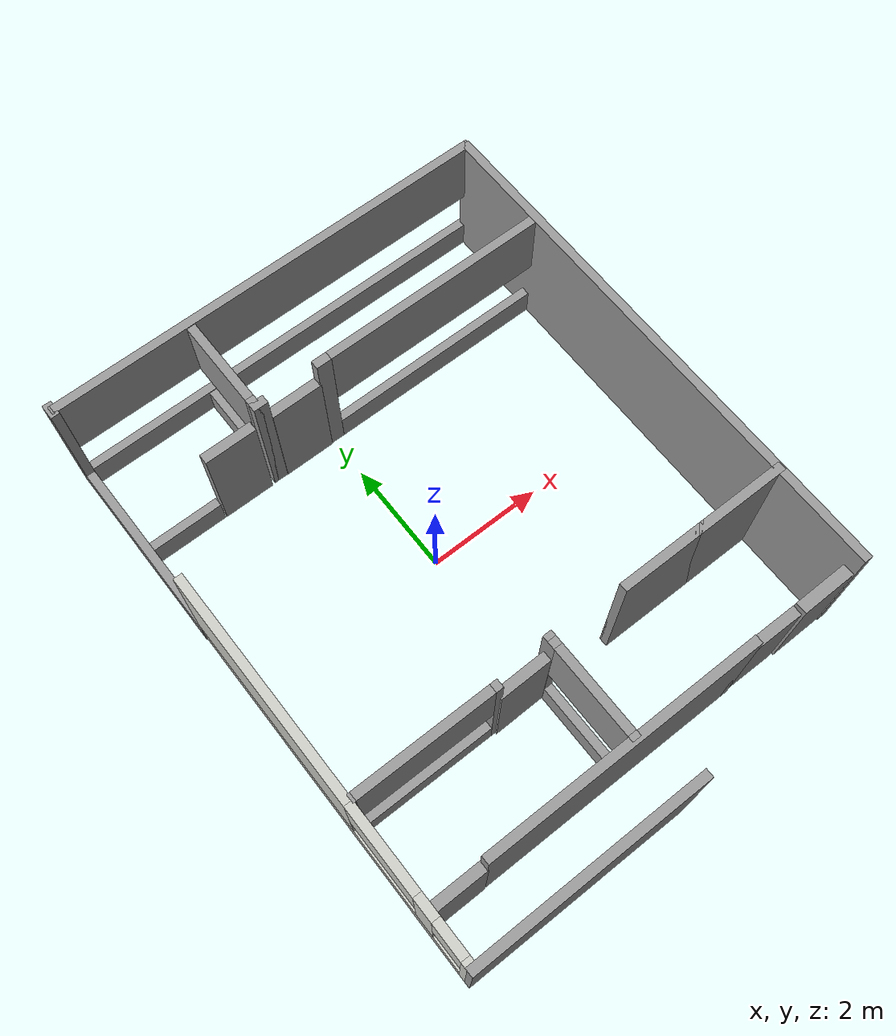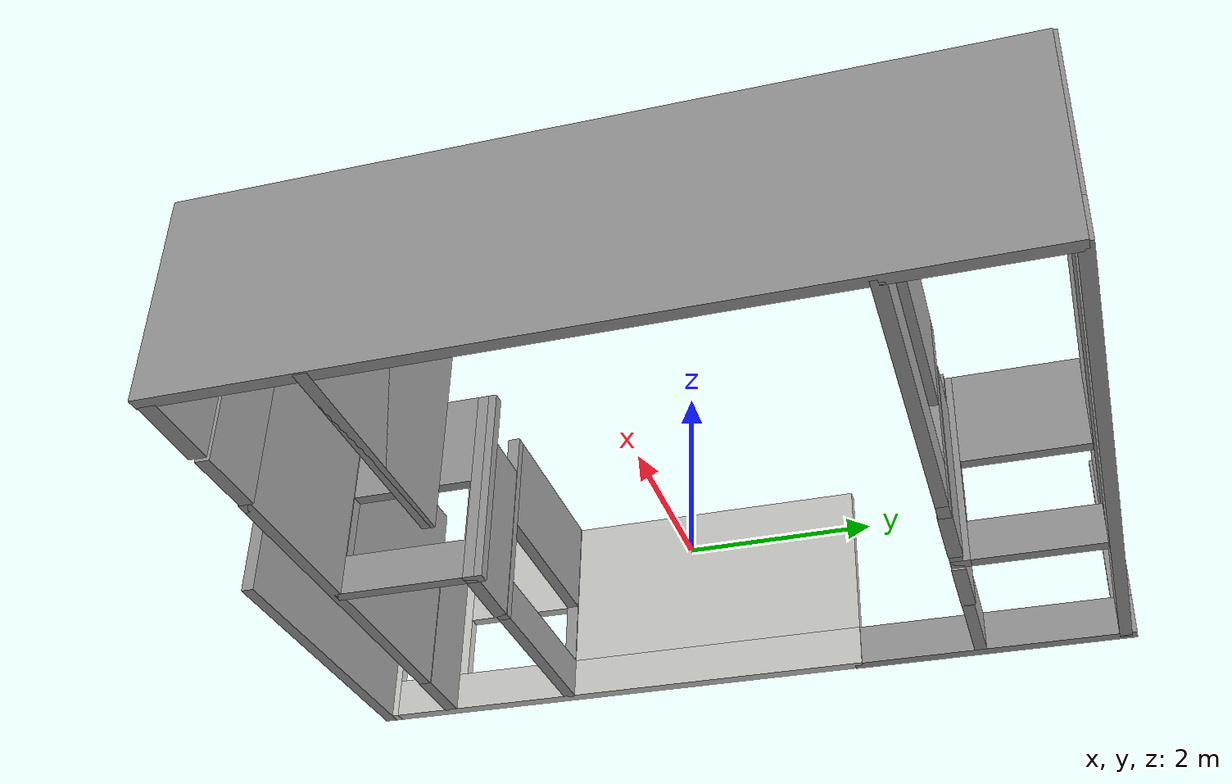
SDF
<?xml version='1.0'?>
<sdf version='1.6'>
  <model name='Office_room'>
    <pose frame=''>0.336715 -0.311362 0 0 -0 0</pose>
    <link name='Door_0'>
      <collision name='Door_0_Collision'>
        <geometry>
          <box>
            <size>0.9 0.17 2</size>
          </box>
        </geometry>
        <pose frame=''>0 0 1 0 -0 0</pose>
      </collision>
      <visual name='Door_0_Visual'>
        <pose frame=''>0 0 1 0 -0 0</pose>
        <geometry>
          <box>
            <size>0.9 0.17 2</size>
          </box>
        </geometry>
        <material>
          <script>
            <uri>file://media/materials/scripts/gazebo.material</uri>
            <name>Gazebo/Grey</name>
          </script>
        </material>
      </visual>
      <pose frame=''>-3.32672 -3.99864 0 0 -0 0</pose>
    </link>
    <link name='Door_1'>
      <collision name='Door_1_Collision'>
        <geometry>
          <box>
            <size>0.9 0.17 2</size>
          </box>
        </geometry>
        <pose frame=''>0 0 1 0 -0 0</pose>
      </collision>
      <visual name='Door_1_Visual'>
        <pose frame=''>0 0 1 0 -0 0</pose>
        <geometry>
          <box>
            <size>0.9 0.17 2</size>
          </box>
        </geometry>
        <material>
          <script>
            <uri>file://media/materials/scripts/gazebo.material</uri>
            <name>Gazebo/Grey</name>
          </script>
        </material>
      </visual>
      <pose frame=''>2.31232 -3.97189 0 0 0 -0.007561</pose>
    </link>
    <link name='Door_2'>
      <collision name='Door_2_Collision'>
        <geometry>
          <box>
            <size>0.9 0.17 2</size>
          </box>
        </geometry>
        <pose frame=''>0 0 1 0 -0 0</pose>
      </collision>
      <visual name='Door_2_Visual'>
        <pose frame=''>0 0 1 0 -0 0</pose>
        <geometry>
          <box>
            <size>0.9 0.17 2</size>
          </box>
        </geometry>
        <material>
          <script>
            <uri>file://media/materials/scripts/gazebo.material</uri>
            <name>Gazebo/Grey</name>
          </script>
        </material>
      </visual>
      <pose frame=''>-0.866715 -2.32864 0 0 0 -3.12813</pose>
    </link>
    <link name='Door_3'>
      <collision name='Door_3_Collision'>
        <geometry>
          <box>
            <size>0.966124 0.2 2</size>
          </box>
        </geometry>
        <pose frame=''>0 0 1 0 -0 0</pose>
      </collision>
      <visual name='Door_3_Visual'>
        <pose frame=''>0 0 1 0 -0 0</pose>
        <geometry>
          <box>
            <size>0.966124 0.2 2</size>
          </box>
        </geometry>
        <material>
          <script>
            <uri>file://media/materials/scripts/gazebo.material</uri>
            <name>Gazebo/Grey</name>
          </script>
        </material>
      </visual>
      <pose frame=''>3.30237 -3.98502 0 0 0 -3.1353</pose>
    </link>
    <link name='Door_4'>
      <collision name='Door_4_Collision'>
        <geometry>
          <box>
            <size>0.9 0.17 2</size>
          </box>
        </geometry>
        <pose frame=''>0 0 1 0 -0 0</pose>
      </collision>
      <visual name='Door_4_Visual'>
        <pose frame=''>0 0 1 0 -0 0</pose>
        <geometry>
          <box>
            <size>0.9 0.17 2</size>
          </box>
        </geometry>
        <material>
          <script>
            <uri>file://media/materials/scripts/gazebo.material</uri>
            <name>Gazebo/Grey</name>
          </script>
        </material>
      </visual>
      <pose frame=''>-2.03982 3.11017 0 0 -0 0</pose>
    </link>
    <link name='Door_5'>
      <collision name='Door_5_Collision'>
        <geometry>
          <box>
            <size>0.9 0.17 2</size>
          </box>
        </geometry>
        <pose frame=''>0 0 1 0 -0 0</pose>
      </collision>
      <visual name='Door_5_Visual'>
        <pose frame=''>0 0 1 0 -0 0</pose>
        <geometry>
          <box>
            <size>0.9 0.17 2</size>
          </box>
        </geometry>
        <material>
          <script>
            <uri>file://media/materials/scripts/gazebo.material</uri>
            <name>Gazebo/Grey</name>
          </script>
        </material>
      </visual>
      <pose frame=''>-0.834442 3.11664 0 0 0 -3.13781</pose>
    </link>
    <link name='Wall_1'>
      <collision name='Wall_1_Collision'>
        <geometry>
          <box>
            <size>4.75 0.15 2.5</size>
          </box>
        </geometry>
        <pose frame=''>0 0 1.25 0 -0 0</pose>
      </collision>
      <visual name='Wall_1_Visual'>
        <pose frame=''>0 0 1.25 0 -0 0</pose>
        <geometry>
          <box>
            <size>4.75 0.15 2.5</size>
          </box>
        </geometry>
        <material>
          <script>
            <uri>file://media/materials/scripts/gazebo.material</uri>
            <name>Gazebo/Grey</name>
          </script>
          <ambient>1 1 1 1</ambient>
        </material>
        <meta>
          <layer>0</layer>
        </meta>
      </visual>
      <pose frame=''>-0.516715 -3.99864 0 0 -0 0</pose>
    </link>
    <link name='Wall_14'>
      <collision name='Wall_14_Collision'>
        <geometry>
          <box>
            <size>3 0.15 2.5</size>
          </box>
        </geometry>
        <pose frame=''>0 0 1.25 0 -0 0</pose>
      </collision>
      <visual name='Wall_14_Visual'>
        <pose frame=''>0 0 1.25 0 -0 0</pose>
        <geometry>
          <box>
            <size>3 0.15 2.5</size>
          </box>
        </geometry>
        <material>
          <script>
            <uri>file://media/materials/scripts/gazebo.material</uri>
            <name>Gazebo/Grey</name>
          </script>
          <ambient>1 1 1 1</ambient>
        </material>
        <meta>
          <layer>0</layer>
        </meta>
      </visual>
      <pose frame=''>2.39026 -2.31103 0 0 -0 3.14159</pose>
    </link>
    <link name='Wall_15'>
      <collision name='Wall_15_Collision'>
        <geometry>
          <box>
            <size>3 0.15 2.5</size>
          </box>
        </geometry>
        <pose frame=''>0 0 1.25 0 -0 0</pose>
      </collision>
      <visual name='Wall_15_Visual'>
        <pose frame=''>0 0 1.25 0 -0 0</pose>
        <geometry>
          <box>
            <size>3 0.15 2.5</size>
          </box>
        </geometry>
        <material>
          <script>
            <uri>file://media/materials/scripts/gazebo.material</uri>
            <name>Gazebo/Grey</name>
          </script>
          <ambient>1 1 1 1</ambient>
        </material>
        <meta>
          <layer>0</layer>
        </meta>
      </visual>
      <pose frame=''>2.39026 -2.31103 0 0 -0 0</pose>
    </link>
    <link name='Wall_19'>
      <collision name='Wall_19_Collision'>
        <geometry>
          <box>
            <size>0.25 0.15 2.5</size>
          </box>
        </geometry>
        <pose frame=''>0 0 1.25 0 -0 0</pose>
      </collision>
      <visual name='Wall_19_Visual'>
        <pose frame=''>0 0 1.25 0 -0 0</pose>
        <geometry>
          <box>
            <size>0.25 0.15 2.5</size>
          </box>
        </geometry>
        <material>
          <script>
            <uri>file://media/materials/scripts/gazebo.material</uri>
            <name>Gazebo/Grey</name>
          </script>
          <ambient>1 1 1 1</ambient>
        </material>
        <meta>
          <layer>0</layer>
        </meta>
      </visual>
      <pose frame=''>-0.346715 -2.28864 0 0 -0 1.5708</pose>
    </link>
    <link name='Wall_2'>
      <collision name='Wall_2_Collision'>
        <geometry>
          <box>
            <size>0.15 0.15 2.5</size>
          </box>
        </geometry>
        <pose frame=''>0 0 1.25 0 -0 0</pose>
      </collision>
      <visual name='Wall_2_Visual'>
        <pose frame=''>0 0 1.25 0 -0 0</pose>
        <geometry>
          <box>
            <size>0.15 0.15 2.5</size>
          </box>
        </geometry>
        <material>
          <script>
            <uri>file://media/materials/scripts/gazebo.material</uri>
            <name>Gazebo/Grey</name>
          </script>
          <ambient>1 1 1 1</ambient>
        </material>
        <meta>
          <layer>0</layer>
        </meta>
      </visual>
      <pose frame=''>1.78329 -3.99864 0 0 -0 0</pose>
    </link>
    <link name='Wall_29'>
      <collision name='Wall_29_Collision'>
        <geometry>
          <box>
            <size>9 0.15 2.5</size>
          </box>
        </geometry>
        <pose frame=''>0 0 1.25 0 -0 0</pose>
      </collision>
      <visual name='Wall_29_Visual'>
        <pose frame=''>0 0 1.25 0 -0 0</pose>
        <geometry>
          <box>
            <size>9 0.15 2.5</size>
          </box>
        </geometry>
        <material>
          <script>
            <uri>file://media/materials/scripts/gazebo.material</uri>
            <name>Gazebo/Grey</name>
          </script>
          <ambient>1 1 1 1</ambient>
        </material>
        <meta>
          <layer>0</layer>
        </meta>
      </visual>
      <pose frame=''>3.83671 0.402172 0 0 0 -1.5708</pose>
    </link>
    <link name='Wall_31'>
      <collision name='Wall_31_Collision'>
        <geometry>
          <box>
            <size>0.25 0.15 2.5</size>
          </box>
        </geometry>
        <pose frame=''>0 0 1.25 0 -0 0</pose>
      </collision>
      <visual name='Wall_31_Visual'>
        <pose frame=''>0 0 1.25 0 -0 0</pose>
        <geometry>
          <box>
            <size>0.25 0.15 2.5</size>
          </box>
        </geometry>
        <material>
          <script>
            <uri>file://media/materials/scripts/gazebo.material</uri>
            <name>Gazebo/Grey</name>
          </script>
          <ambient>1 1 1 1</ambient>
        </material>
        <meta>
          <layer>0</layer>
        </meta>
      </visual>
      <pose frame=''>-1.41111 3.11017 0 0 -0 0</pose>
    </link>
    <link name='Wall_35'>
      <pose frame=''>0.017406 4.87007 0 0 -0 0</pose>
      <visual name='Wall_35_Visual_0'>
        <pose frame=''>-3.85781 0 1.25 0 -0 0</pose>
        <geometry>
          <box>
            <size>0.034369 0.15 2.5</size>
          </box>
        </geometry>
        <material>
          <script>
            <uri>file://media/materials/scripts/gazebo.material</uri>
            <name>Gazebo/Grey</name>
          </script>
          <ambient>1 1 1 1</ambient>
        </material>
        <meta>
          <layer>0</layer>
        </meta>
      </visual>
      <collision name='Wall_35_Collision_0'>
        <geometry>
          <box>
            <size>0.034369 0.15 2.5</size>
          </box>
        </geometry>
        <pose frame=''>-3.85781 0 1.25 0 -0 0</pose>
      </collision>
      <visual name='Wall_35_Visual_1'>
        <pose frame=''>0.017185 0 0.25 0 -0 0</pose>
        <geometry>
          <box>
            <size>7.71563 0.15 0.5</size>
          </box>
        </geometry>
        <material>
          <script>
            <uri>file://media/materials/scripts/gazebo.material</uri>
            <name>Gazebo/Grey</name>
          </script>
          <ambient>1 1 1 1</ambient>
        </material>
        <meta>
          <layer>0</layer>
        </meta>
      </visual>
      <collision name='Wall_35_Collision_1'>
        <geometry>
          <box>
            <size>7.71563 0.15 0.5</size>
          </box>
        </geometry>
        <pose frame=''>0.017185 0 0.25 0 -0 0</pose>
      </collision>
      <visual name='Wall_35_Visual_2'>
        <pose frame=''>3.85399 0 1.5 0 -0 0</pose>
        <geometry>
          <box>
            <size>0.042012 0.15 2</size>
          </box>
        </geometry>
        <material>
          <script>
            <uri>file://media/materials/scripts/gazebo.material</uri>
            <name>Gazebo/Grey</name>
          </script>
          <ambient>1 1 1 1</ambient>
        </material>
        <meta>
          <layer>0</layer>
        </meta>
      </visual>
      <collision name='Wall_35_Collision_2'>
        <geometry>
          <box>
            <size>0.042012 0.15 2</size>
          </box>
        </geometry>
        <pose frame=''>3.85399 0 1.5 0 -0 0</pose>
      </collision>
      <visual name='Wall_35_Visual_3'>
        <pose frame=''>-0.003821 0 1.9 0 -0 0</pose>
        <geometry>
          <box>
            <size>7.67362 0.15 1.2</size>
          </box>
        </geometry>
        <material>
          <script>
            <uri>file://media/materials/scripts/gazebo.material</uri>
            <name>Gazebo/Grey</name>
          </script>
          <ambient>1 1 1 1</ambient>
        </material>
        <meta>
          <layer>0</layer>
        </meta>
      </visual>
      <collision name='Wall_35_Collision_3'>
        <geometry>
          <box>
            <size>7.67362 0.15 1.2</size>
          </box>
        </geometry>
        <pose frame=''>-0.003821 0 1.9 0 -0 0</pose>
      </collision>
    </link>
    <link name='Wall_37'>
      <pose frame=''>-3.83671 3.25636 0 0 -0 1.5708</pose>
      <visual name='Wall_37_Visual_0'>
        <pose frame=''>0 0 0.25 0 -0 0</pose>
        <geometry>
          <box>
            <size>3.5 0.15 0.5</size>
          </box>
        </geometry>
        <material>
          <script>
            <uri>file://media/materials/scripts/gazebo.material</uri>
            <name>Gazebo/Grey</name>
          </script>
          <ambient>1 1 1 1</ambient>
        </material>
        <meta>
          <layer>0</layer>
        </meta>
      </visual>
      <collision name='Wall_37_Collision_0'>
        <geometry>
          <box>
            <size>3.5 0.15 0.5</size>
          </box>
        </geometry>
        <pose frame=''>0 0 0.25 0 -0 0</pose>
      </collision>
      <visual name='Wall_37_Visual_1'>
        <pose frame=''>1.62366 0 1.5 0 -0 0</pose>
        <geometry>
          <box>
            <size>0.252674 0.15 2</size>
          </box>
        </geometry>
        <material>
          <script>
            <uri>file://media/materials/scripts/gazebo.material</uri>
            <name>Gazebo/Grey</name>
          </script>
          <ambient>1 1 1 1</ambient>
        </material>
        <meta>
          <layer>0</layer>
        </meta>
      </visual>
      <collision name='Wall_37_Collision_1'>
        <geometry>
          <box>
            <size>0.252674 0.15 2</size>
          </box>
        </geometry>
        <pose frame=''>1.62366 0 1.5 0 -0 0</pose>
      </collision>
    </link>
    <link name='Wall_40'>
      <pose frame=''>-3.13843 3.10362 0 0 -0 3.14159</pose>
      <visual name='Wall_40_Visual_0'>
        <pose frame=''>0 0 0.25 0 -0 0</pose>
        <geometry>
          <box>
            <size>1.25 0.15 0.5</size>
          </box>
        </geometry>
        <material>
          <script>
            <uri>file://media/materials/scripts/gazebo.material</uri>
            <name>Gazebo/Grey</name>
          </script>
          <ambient>1 1 1 1</ambient>
        </material>
        <meta>
          <layer>0</layer>
        </meta>
      </visual>
      <collision name='Wall_40_Collision_0'>
        <geometry>
          <box>
            <size>1.25 0.15 0.5</size>
          </box>
        </geometry>
        <pose frame=''>0 0 0.25 0 -0 0</pose>
      </collision>
    </link>
    <link name='Wall_42'>
      <pose frame=''>1.72225 3.1198 0 0 -0 0</pose>
      <visual name='Wall_42_Visual_0'>
        <pose frame=''>-1.99309 0 1.25 0 -0 0</pose>
        <geometry>
          <box>
            <size>0.26382 0.15 2.5</size>
          </box>
        </geometry>
        <material>
          <script>
            <uri>file://media/materials/scripts/gazebo.material</uri>
            <name>Gazebo/Grey</name>
          </script>
          <ambient>1 1 1 1</ambient>
        </material>
        <meta>
          <layer>0</layer>
        </meta>
      </visual>
      <collision name='Wall_42_Collision_0'>
        <geometry>
          <box>
            <size>0.26382 0.15 2.5</size>
          </box>
        </geometry>
        <pose frame=''>-1.99309 0 1.25 0 -0 0</pose>
      </collision>
      <visual name='Wall_42_Visual_1'>
        <pose frame=''>0.13191 0 0.25 0 -0 0</pose>
        <geometry>
          <box>
            <size>3.98618 0.15 0.5</size>
          </box>
        </geometry>
        <material>
          <script>
            <uri>file://media/materials/scripts/gazebo.material</uri>
            <name>Gazebo/Grey</name>
          </script>
          <ambient>1 1 1 1</ambient>
        </material>
        <meta>
          <layer>0</layer>
        </meta>
      </visual>
      <collision name='Wall_42_Collision_1'>
        <geometry>
          <box>
            <size>3.98618 0.15 0.5</size>
          </box>
        </geometry>
        <pose frame=''>0.13191 0 0.25 0 -0 0</pose>
      </collision>
      <visual name='Wall_42_Visual_2'>
        <pose frame=''>2.10351 0 1.5 0 -0 0</pose>
        <geometry>
          <box>
            <size>0.042976 0.15 2</size>
          </box>
        </geometry>
        <material>
          <script>
            <uri>file://media/materials/scripts/gazebo.material</uri>
            <name>Gazebo/Grey</name>
          </script>
          <ambient>1 1 1 1</ambient>
        </material>
        <meta>
          <layer>0</layer>
        </meta>
      </visual>
      <collision name='Wall_42_Collision_2'>
        <geometry>
          <box>
            <size>0.042976 0.15 2</size>
          </box>
        </geometry>
        <pose frame=''>2.10351 0 1.5 0 -0 0</pose>
      </collision>
      <visual name='Wall_42_Visual_3'>
        <pose frame=''>0.110422 0 1.9 0 -0 0</pose>
        <geometry>
          <box>
            <size>3.9432 0.15 1.2</size>
          </box>
        </geometry>
        <material>
          <script>
            <uri>file://media/materials/scripts/gazebo.material</uri>
            <name>Gazebo/Grey</name>
          </script>
          <ambient>1 1 1 1</ambient>
        </material>
        <meta>
          <layer>0</layer>
        </meta>
      </visual>
      <collision name='Wall_42_Collision_3'>
        <geometry>
          <box>
            <size>3.9432 0.15 1.2</size>
          </box>
        </geometry>
        <pose frame=''>0.110422 0 1.9 0 -0 0</pose>
      </collision>
    </link>
    <link name='Wall_44'>
      <pose frame=''>-2.52917 -2.3175 0 0 -0 3.14159</pose>
      <visual name='Wall_44_Visual_0'>
        <pose frame=''>-1.1869 0 1.25 0 -0 0</pose>
        <geometry>
          <box>
            <size>0.126206 0.15 2.5</size>
          </box>
        </geometry>
        <material>
          <script>
            <uri>file://media/materials/scripts/gazebo.material</uri>
            <name>Gazebo/Grey</name>
          </script>
          <ambient>1 1 1 1</ambient>
        </material>
        <meta>
          <layer>0</layer>
        </meta>
      </visual>
      <collision name='Wall_44_Collision_0'>
        <geometry>
          <box>
            <size>0.126206 0.15 2.5</size>
          </box>
        </geometry>
        <pose frame=''>-1.1869 0 1.25 0 -0 0</pose>
      </collision>
      <visual name='Wall_44_Visual_1'>
        <pose frame=''>0.063103 0 0.25 0 -0 0</pose>
        <geometry>
          <box>
            <size>2.37379 0.15 0.5</size>
          </box>
        </geometry>
        <material>
          <script>
            <uri>file://media/materials/scripts/gazebo.material</uri>
            <name>Gazebo/Grey</name>
          </script>
          <ambient>1 1 1 1</ambient>
        </material>
        <meta>
          <layer>0</layer>
        </meta>
      </visual>
      <collision name='Wall_44_Collision_1'>
        <geometry>
          <box>
            <size>2.37379 0.15 0.5</size>
          </box>
        </geometry>
        <pose frame=''>0.063103 0 0.25 0 -0 0</pose>
      </collision>
      <visual name='Wall_44_Visual_2'>
        <pose frame=''>1.22403 0 1.5 0 -0 0</pose>
        <geometry>
          <box>
            <size>0.05193 0.15 2</size>
          </box>
        </geometry>
        <material>
          <script>
            <uri>file://media/materials/scripts/gazebo.material</uri>
            <name>Gazebo/Grey</name>
          </script>
          <ambient>1 1 1 1</ambient>
        </material>
        <meta>
          <layer>0</layer>
        </meta>
      </visual>
      <collision name='Wall_44_Collision_2'>
        <geometry>
          <box>
            <size>0.05193 0.15 2</size>
          </box>
        </geometry>
        <pose frame=''>1.22403 0 1.5 0 -0 0</pose>
      </collision>
      <visual name='Wall_44_Visual_3'>
        <pose frame=''>0.037138 0 1.9 0 -0 0</pose>
        <geometry>
          <box>
            <size>2.32186 0.15 1.2</size>
          </box>
        </geometry>
        <material>
          <script>
            <uri>file://media/materials/scripts/gazebo.material</uri>
            <name>Gazebo/Grey</name>
          </script>
          <ambient>1 1 1 1</ambient>
        </material>
        <meta>
          <layer>0</layer>
        </meta>
      </visual>
      <collision name='Wall_44_Collision_3'>
        <geometry>
          <box>
            <size>2.32186 0.15 1.2</size>
          </box>
        </geometry>
        <pose frame=''>0.037138 0 1.9 0 -0 0</pose>
      </collision>
    </link>
    <link name='Wall_46'>
      <pose frame=''>-0.346715 -3.13864 0 0 0 -1.5708</pose>
      <visual name='Wall_46_Visual_0'>
        <pose frame=''>-0.806799 0 1.25 0 -0 0</pose>
        <geometry>
          <box>
            <size>0.136402 0.15 2.5</size>
          </box>
        </geometry>
        <material>
          <script>
            <uri>file://media/materials/scripts/gazebo.material</uri>
            <name>Gazebo/Grey</name>
          </script>
          <ambient>1 1 1 1</ambient>
        </material>
        <meta>
          <layer>0</layer>
        </meta>
      </visual>
      <collision name='Wall_46_Collision_0'>
        <geometry>
          <box>
            <size>0.136402 0.15 2.5</size>
          </box>
        </geometry>
        <pose frame=''>-0.806799 0 1.25 0 -0 0</pose>
      </collision>
      <visual name='Wall_46_Visual_1'>
        <pose frame=''>0.068201 0 0.25 0 -0 0</pose>
        <geometry>
          <box>
            <size>1.6136 0.15 0.5</size>
          </box>
        </geometry>
        <material>
          <script>
            <uri>file://media/materials/scripts/gazebo.material</uri>
            <name>Gazebo/Grey</name>
          </script>
          <ambient>1 1 1 1</ambient>
        </material>
        <meta>
          <layer>0</layer>
        </meta>
      </visual>
      <collision name='Wall_46_Collision_1'>
        <geometry>
          <box>
            <size>1.6136 0.15 0.5</size>
          </box>
        </geometry>
        <pose frame=''>0.068201 0 0.25 0 -0 0</pose>
      </collision>
      <visual name='Wall_46_Visual_2'>
        <pose frame=''>0.824679 0 1.5 0 -0 0</pose>
        <geometry>
          <box>
            <size>0.100642 0.15 2</size>
          </box>
        </geometry>
        <material>
          <script>
            <uri>file://media/materials/scripts/gazebo.material</uri>
            <name>Gazebo/Grey</name>
          </script>
          <ambient>1 1 1 1</ambient>
        </material>
        <meta>
          <layer>0</layer>
        </meta>
      </visual>
      <collision name='Wall_46_Collision_2'>
        <geometry>
          <box>
            <size>0.100642 0.15 2</size>
          </box>
        </geometry>
        <pose frame=''>0.824679 0 1.5 0 -0 0</pose>
      </collision>
      <visual name='Wall_46_Visual_3'>
        <pose frame=''>0.01788 0 1.9 0 -0 0</pose>
        <geometry>
          <box>
            <size>1.51296 0.15 1.2</size>
          </box>
        </geometry>
        <material>
          <script>
            <uri>file://media/materials/scripts/gazebo.material</uri>
            <name>Gazebo/Grey</name>
          </script>
          <ambient>1 1 1 1</ambient>
        </material>
        <meta>
          <layer>0</layer>
        </meta>
      </visual>
      <collision name='Wall_46_Collision_3'>
        <geometry>
          <box>
            <size>1.51296 0.15 1.2</size>
          </box>
        </geometry>
        <pose frame=''>0.01788 0 1.9 0 -0 0</pose>
      </collision>
    </link>
    <link name='Wall_48'>
      <pose frame=''>-1.46111 3.91017 0 0 -0 1.5708</pose>
      <visual name='Wall_48_Visual_0'>
        <pose frame=''>-0.758332 0 1.25 0 -0 0</pose>
        <geometry>
          <box>
            <size>0.233336 0.15 2.5</size>
          </box>
        </geometry>
        <material>
          <script>
            <uri>file://media/materials/scripts/gazebo.material</uri>
            <name>Gazebo/Grey</name>
          </script>
          <ambient>1 1 1 1</ambient>
        </material>
        <meta>
          <layer>0</layer>
        </meta>
      </visual>
      <collision name='Wall_48_Collision_0'>
        <geometry>
          <box>
            <size>0.233336 0.15 2.5</size>
          </box>
        </geometry>
        <pose frame=''>-0.758332 0 1.25 0 -0 0</pose>
      </collision>
      <visual name='Wall_48_Visual_1'>
        <pose frame=''>0.116668 0 0.25 0 -0 0</pose>
        <geometry>
          <box>
            <size>1.51666 0.15 0.5</size>
          </box>
        </geometry>
        <material>
          <script>
            <uri>file://media/materials/scripts/gazebo.material</uri>
            <name>Gazebo/Grey</name>
          </script>
          <ambient>1 1 1 1</ambient>
        </material>
        <meta>
          <layer>0</layer>
        </meta>
      </visual>
      <collision name='Wall_48_Collision_1'>
        <geometry>
          <box>
            <size>1.51666 0.15 0.5</size>
          </box>
        </geometry>
        <pose frame=''>0.116668 0 0.25 0 -0 0</pose>
      </collision>
      <visual name='Wall_48_Visual_2'>
        <pose frame=''>0.116668 0 1.9 0 -0 0</pose>
        <geometry>
          <box>
            <size>1.51666 0.15 1.2</size>
          </box>
        </geometry>
        <material>
          <script>
            <uri>file://media/materials/scripts/gazebo.material</uri>
            <name>Gazebo/Grey</name>
          </script>
          <ambient>1 1 1 1</ambient>
        </material>
        <meta>
          <layer>0</layer>
        </meta>
      </visual>
      <collision name='Wall_48_Collision_2'>
        <geometry>
          <box>
            <size>1.51666 0.15 1.2</size>
          </box>
        </geometry>
        <pose frame=''>0.116668 0 1.9 0 -0 0</pose>
      </collision>
    </link>
    <link name='Wall_7'>
      <collision name='Wall_7_Collision'>
        <geometry>
          <box>
            <size>4 0.15 2.5</size>
          </box>
        </geometry>
        <pose frame=''>0 0 1.25 0 -0 0</pose>
      </collision>
      <visual name='Wall_7_Visual'>
        <pose frame=''>0 0 1.25 0 -0 0</pose>
        <geometry>
          <box>
            <size>4 0.15 2.5</size>
          </box>
        </geometry>
        <material>
          <script>
            <uri>file://media/materials/scripts/gazebo.material</uri>
            <name>Gazebo/Grey</name>
          </script>
          <ambient>0 0 0 1</ambient>
        </material>
        <meta>
          <layer>0</layer>
        </meta>
      </visual>
      <pose frame=''>-1.89688 -4.93136 0 0 -0 0</pose>
    </link>
    <link name='Wall_9'>
      <pose frame=''>-3.82332 -1.64581 0 0 -0 1.5708</pose>
      <visual name='Wall_9_Visual_0'>
        <pose frame=''>-3.18923 0 1.25 0 -0 0</pose>
        <geometry>
          <box>
            <size>0.121542 0.15 2.5</size>
          </box>
        </geometry>
        <material>
          <script>
            <uri>file://media/materials/scripts/gazebo.material</uri>
            <name>Gazebo/CeilingTiled</name>
          </script>
          <ambient>1 1 1 1</ambient>
        </material>
        <meta>
          <layer>0</layer>
        </meta>
      </visual>
      <collision name='Wall_9_Collision_0'>
        <geometry>
          <box>
            <size>0.121542 0.15 2.5</size>
          </box>
        </geometry>
        <pose frame=''>-3.18923 0 1.25 0 -0 0</pose>
      </collision>
      <visual name='Wall_9_Visual_1'>
        <pose frame=''>0.060771 0 0.25 0 -0 0</pose>
        <geometry>
          <box>
            <size>6.37846 0.15 0.5</size>
          </box>
        </geometry>
        <material>
          <script>
            <uri>file://media/materials/scripts/gazebo.material</uri>
            <name>Gazebo/CeilingTiled</name>
          </script>
          <ambient>1 1 1 1</ambient>
        </material>
        <meta>
          <layer>0</layer>
        </meta>
      </visual>
      <collision name='Wall_9_Collision_1'>
        <geometry>
          <box>
            <size>6.37846 0.15 0.5</size>
          </box>
        </geometry>
        <pose frame=''>0.060771 0 0.25 0 -0 0</pose>
      </collision>
      <visual name='Wall_9_Visual_2'>
        <pose frame=''>-2.34543 0 1.5 0 -0 0</pose>
        <geometry>
          <box>
            <size>0.385418 0.15 2</size>
          </box>
        </geometry>
        <material>
          <script>
            <uri>file://media/materials/scripts/gazebo.material</uri>
            <name>Gazebo/CeilingTiled</name>
          </script>
          <ambient>1 1 1 1</ambient>
        </material>
        <meta>
          <layer>0</layer>
        </meta>
      </visual>
      <collision name='Wall_9_Collision_2'>
        <geometry>
          <box>
            <size>0.385418 0.15 2</size>
          </box>
        </geometry>
        <pose frame=''>-2.34543 0 1.5 0 -0 0</pose>
      </collision>
      <visual name='Wall_9_Visual_3'>
        <pose frame=''>1.27449 0 1.5 0 -0 0</pose>
        <geometry>
          <box>
            <size>3.95101 0.15 2</size>
          </box>
        </geometry>
        <material>
          <script>
            <uri>file://media/materials/scripts/gazebo.material</uri>
            <name>Gazebo/CeilingTiled</name>
          </script>
          <ambient>1 1 1 1</ambient>
        </material>
        <meta>
          <layer>0</layer>
        </meta>
      </visual>
      <collision name='Wall_9_Collision_3'>
        <geometry>
          <box>
            <size>3.95101 0.15 2</size>
          </box>
        </geometry>
        <pose frame=''>1.27449 0 1.5 0 -0 0</pose>
      </collision>
      <visual name='Wall_9_Visual_4'>
        <pose frame=''>-2.8333 0 1.9 0 -0 0</pose>
        <geometry>
          <box>
            <size>0.590321 0.15 1.2</size>
          </box>
        </geometry>
        <material>
          <script>
            <uri>file://media/materials/scripts/gazebo.material</uri>
            <name>Gazebo/CeilingTiled</name>
          </script>
          <ambient>1 1 1 1</ambient>
        </material>
        <meta>
          <layer>0</layer>
        </meta>
      </visual>
      <collision name='Wall_9_Collision_4'>
        <geometry>
          <box>
            <size>0.590321 0.15 1.2</size>
          </box>
        </geometry>
        <pose frame=''>-2.8333 0 1.9 0 -0 0</pose>
      </collision>
      <visual name='Wall_9_Visual_5'>
        <pose frame=''>-1.42687 0 1.9 0 -0 0</pose>
        <geometry>
          <box>
            <size>1.45171 0.15 1.2</size>
          </box>
        </geometry>
        <material>
          <script>
            <uri>file://media/materials/scripts/gazebo.material</uri>
            <name>Gazebo/CeilingTiled</name>
          </script>
          <ambient>1 1 1 1</ambient>
        </material>
        <meta>
          <layer>0</layer>
        </meta>
      </visual>
      <collision name='Wall_9_Collision_5'>
        <geometry>
          <box>
            <size>1.45171 0.15 1.2</size>
          </box>
        </geometry>
        <pose frame=''>-1.42687 0 1.9 0 -0 0</pose>
      </collision>
    </link>
    <static>1</static>
  </model>
</sdf>
